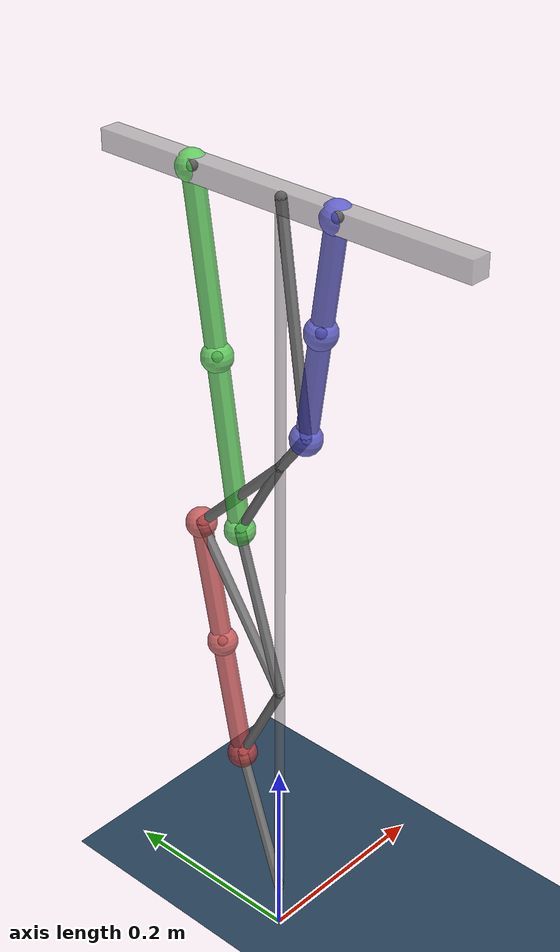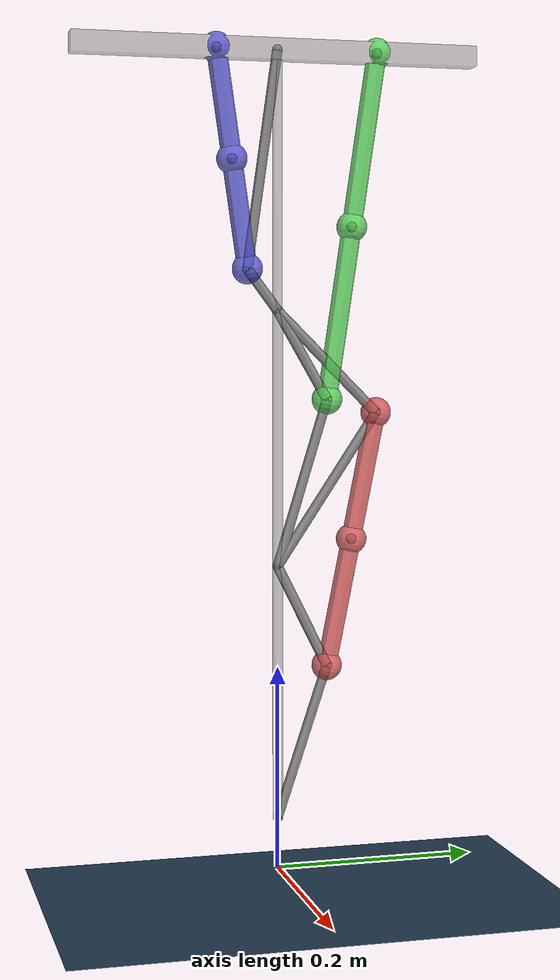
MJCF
<mujoco model="v2_4">
  <compiler angle="radian"/>

  <option timestep="0.001" tolerance="1e-10" gravity="0 0 -9.8" iterations="2000"/>

  <default>
    <geom density="418"/>
  </default>

  <asset>
    <texture type="2d" name="grid" builtin="checker" rgb1="0.1 0.2 0.3" rgb2="0.2 0.3 0.4" width="300" height="300"/>
    <material name="grid" texture="grid" texrepeat="8 8" reflectance="0.2"/>
  </asset>

  <worldbody>
    <geom size="10 10 0.01" type="plane" material="grid"/>
    <camera name="closeup" pos="1.483 -0.033 0.58" quat="0.541807 0.475866 0.457194 0.520547"/>
    <light name="top" pos="0 0 5" dir="0 0 -1" ambient="0.5 0.5 0.5" diffuse="1 1 1"/>
    <body name="Base" pos="0 0 0.8">
      <geom size="0.01 0.2 0.01" type="box" contype="0" conaffinity="0" mass="0.155" rgba="0.5 0.5 0.5 0.5"/>
      <body name="link0_body">
        <site name="link0_body_site" pos="0 0 0"/>
        <joint name="link0_joint" pos="0 0 0" axis="1 0 0" range="-1.57 1.57"/>
        <geom name="link0_geom" size="0.005 0.125" pos="0 0 -0.125" type="capsule" contype="0" conaffinity="0" mass="0.086" rgba="0.5 0.5 0.5 0.5"/>
        <body name="link1_body" pos="0 0 -0.25">
          <site name="link1_body_site" pos="0 0 0"/>
          <joint name="link1_joint" pos="0 0 0" axis="1 0 0" range="-1.57 1.57"/>
          <geom name="link1_geom" size="0.005 0.125" pos="0 0 -0.125" type="capsule" contype="0" conaffinity="0" mass="0.1033" rgba="0.5 0.5 0.5 0.5"/>
          <body name="link2_body" pos="0 0 -0.25">
            <site name="link2_body_site" pos="0 0 0"/>
            <joint name="link2_joint" pos="0 0 0" axis="1 0 0" range="-1.57 1.57"/>
            <geom name="link2_geom" size="0.005 0.125" pos="0 0 -0.125" type="capsule" contype="0" conaffinity="0" mass="0.1033" rgba="0.5 0.5 0.5 0.5"/>
            <site name="link3_body_site" pos="0 0 -0.25"/>
          </body>
          <body name="muscle2_uLink" pos="0 0.1 -0.1" quat="0.995133 -0.0985376 0 0">
            <joint name="muscle2_uRotJoint" pos="0 0 0" axis="1 0 0"/>
            <geom name="muscle2_uGeom" size="0.015" contype="0" conaffinity="0" mass="0.03" rgba="0.8 0.3 0.3 0.8"/>
            <site name="muscle2_uSite" pos="0 0 0"/>
            <body name="muscle2_mLink" pos="0 0 -0.127475">
              <joint name="muscle2_mSlideJoint" pos="0 0 0" axis="0 0 -1" type="slide" springref="-3.98196e-11" stiffness="131.6" damping="1.8"/>
              <geom name="muscle2_mGeom" size="0.015" contype="0" conaffinity="0" mass="0.12" rgba="0.8 0.3 0.3 0.8"/>
              <site name="muscle2_mSite" pos="0 0 0"/>
              <body name="muscle2_lLink" pos="0 0 -0.127475">
                <joint name="muscle2_lSlideJoint" pos="0 0 0" axis="0 0 -1" type="slide" springref="-3.98196e-11" stiffness="131.6" damping="1.8"/>
                <geom name="muscle2_lGeom" size="0.015" contype="0" conaffinity="0" mass="0.03" rgba="0.8 0.3 0.3 0.8"/>
                <site name="muscle2_lSite" pos="0 0 0"/>
              </body>
            </body>
          </body>
        </body>
      </body>
      <body name="muscle0_uLink" pos="0 -0.06 0" quat="0.997484 0.0708912 0 0">
        <joint name="muscle0_uRotJoint" pos="0 0 0" axis="1 0 0"/>
        <geom name="muscle0_uGeom" size="0.015" contype="0" conaffinity="0" mass="0.03108" rgba="0.3 0.3 0.8 0.8"/>
        <site name="muscle0_uSite" pos="0 0 0"/>
        <body name="muscle0_mLink" pos="0 0 -0.106065">
          <joint name="muscle0_mSlideJoint" pos="0 0 0" axis="0 0 -1" type="slide" springref="-0.0190651" stiffness="637.52" damping="22.68"/>
          <geom name="muscle0_mGeom" size="0.015" contype="0" conaffinity="0" mass="0.12432" rgba="0.3 0.3 0.8 0.8"/>
          <site name="muscle0_mSite" pos="0 0 0"/>
          <body name="muscle0_lLink" pos="0 0 -0.106065">
            <joint name="muscle0_lSlideJoint" pos="0 0 0" axis="0 0 -1" type="slide" springref="-0.0190651" stiffness="637.52" damping="22.68"/>
            <geom name="muscle0_lGeom" size="0.015" contype="0" conaffinity="0" mass="0.03108" rgba="0.3 0.3 0.8 0.8"/>
            <site name="muscle0_lSite" pos="0 0 0"/>
          </body>
        </body>
      </body>
      <body name="muscle1_uLink" pos="0 0.1 0" quat="0.997283 -0.0736656 0 0">
        <joint name="muscle1_uRotJoint" pos="0 0 0" axis="1 0 0"/>
        <geom name="muscle1_uGeom" size="0.015" contype="0" conaffinity="0" mass="0.0454433" rgba="0.3 0.8 0.3 0.8"/>
        <site name="muscle1_uSite" pos="0 0 0"/>
        <body name="muscle1_mLink" pos="0 0 -0.170148">
          <joint name="muscle1_mSlideJoint" pos="0 0 0" axis="0 0 -1" type="slide" springref="-0.0420479" stiffness="631.6" damping="21.8"/>
          <geom name="muscle1_mGeom" size="0.015" contype="0" conaffinity="0" mass="0.181773" rgba="0.3 0.8 0.3 0.8"/>
          <site name="muscle1_mSite" pos="0 0 0"/>
          <body name="muscle1_lLink" pos="0 0 -0.170148">
            <joint name="muscle1_lSlideJoint" pos="0 0 0" axis="0 0 -1" type="slide" springref="-0.0420479" stiffness="631.6" damping="21.8"/>
            <geom name="muscle1_lGeom" size="0.015" contype="0" conaffinity="0" mass="0.0454433" rgba="0.3 0.8 0.3 0.8"/>
            <site name="muscle1_lSite" pos="0 0 0"/>
          </body>
        </body>
      </body>
    </body>
  </worldbody>

  <equality>
    <joint name="muscle0_equality" joint1="muscle0_mSlideJoint" joint2="muscle0_lSlideJoint" polycoef="0 1 0 0 0" solimp="0.95 0.99 1e-05 0.1"/>
    <connect name="_muscle0_equality_connect" body1="muscle0_lLink" body2="link0_body" anchor="0 0 0" solimp="0.95 0.99 1e-05 0.1"/>
    <joint name="muscle1_equality" joint1="muscle1_mSlideJoint" joint2="muscle1_lSlideJoint" polycoef="0 1 0 0 0" solimp="0.95 0.99 1e-05 0.1"/>
    <connect name="_muscle1_equality_connect" body1="muscle1_lLink" body2="link1_body" anchor="0 0 0" solimp="0.95 0.99 1e-05 0.1"/>
    <joint name="muscle2_equality" joint1="muscle2_mSlideJoint" joint2="muscle2_lSlideJoint" polycoef="0 1 0 0 0" solimp="0.95 0.99 1e-05 0.1"/>
    <connect name="_muscle2_equality_connect" body1="muscle2_lLink" body2="link2_body" anchor="0 0 0" solimp="0.95 0.99 1e-05 0.1"/>
  </equality>

  <tendon>
    <spatial name="tendon_muscle0" rgba="0.3 0.3 0.8 0.8" width="0.01">
      <site site="muscle0_uSite"/>
      <site site="muscle0_lSite"/>
    </spatial>
    <spatial name="tendon_muscle1" rgba="0.3 0.8 0.3 0.8" width="0.01">
      <site site="muscle1_uSite"/>
      <site site="muscle1_lSite"/>
    </spatial>
    <spatial name="tendon_muscle2" rgba="0.8 0.3 0.3 0.8" width="0.01">
      <site site="muscle2_uSite"/>
      <site site="muscle2_lSite"/>
    </spatial>
    <spatial name="_0" rgba="0.5 0.5 0.5 1" width="0.005">
      <site site="muscle0_lSite"/>
      <site site="link0_body_site"/>
    </spatial>
    <spatial name="_1" rgba="0.5 0.5 0.5 1" width="0.005">
      <site site="muscle0_lSite"/>
      <site site="link1_body_site"/>
    </spatial>
    <spatial name="_2" rgba="0.5 0.5 0.5 1" width="0.005">
      <site site="muscle1_lSite"/>
      <site site="link1_body_site"/>
    </spatial>
    <spatial name="_3" rgba="0.5 0.5 0.5 1" width="0.005">
      <site site="muscle1_lSite"/>
      <site site="link2_body_site"/>
    </spatial>
    <spatial name="_4" rgba="0.5 0.5 0.5 1" width="0.005">
      <site site="muscle2_lSite"/>
      <site site="link2_body_site"/>
    </spatial>
    <spatial name="_5" rgba="0.5 0.5 0.5 1" width="0.005">
      <site site="muscle2_lSite"/>
      <site site="link3_body_site"/>
    </spatial>
    <spatial name="_6" rgba="0.5 0.5 0.5 1" width="0.005">
      <site site="muscle2_uSite"/>
      <site site="link1_body_site"/>
    </spatial>
    <spatial name="_7" rgba="0.5 0.5 0.5 1" width="0.005">
      <site site="muscle2_uSite"/>
      <site site="link2_body_site"/>
    </spatial>
  </tendon>

  <actuator>
    <general name="motor_muscle0_mSlideJoint" joint="muscle0_mSlideJoint" ctrllimited="true" ctrlrange="-200 200"/>
    <general name="motor_muscle0_lSlideJoint" joint="muscle0_lSlideJoint" ctrllimited="true" ctrlrange="-200 200"/>
    <general name="motor_muscle1_mSlideJoint" joint="muscle1_mSlideJoint" ctrllimited="true" ctrlrange="-200 200"/>
    <general name="motor_muscle1_lSlideJoint" joint="muscle1_lSlideJoint" ctrllimited="true" ctrlrange="-200 200"/>
    <general name="motor_muscle2_mSlideJoint" joint="muscle2_mSlideJoint" ctrllimited="true" ctrlrange="-200 200"/>
    <general name="motor_muscle2_lSlideJoint" joint="muscle2_lSlideJoint" ctrllimited="true" ctrlrange="-200 200"/>
  </actuator>
</mujoco>
